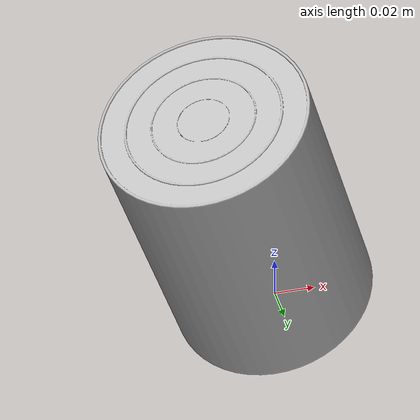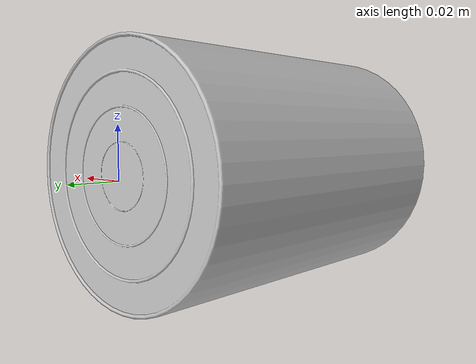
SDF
<?xml version="1.0" ?>
<sdf version="1.4">
  <model name="corn">
      <static>1</static>
      <link name='link'>
        <inertial>
          <mass>0.2</mass>
          <inertia>
            <ixx>0.166667</ixx>
            <ixy>0</ixy>
            <ixz>0</ixz>
            <iyy>0.166667</iyy>
            <iyz>0</iyz>
            <izz>0.166667</izz>
          </inertia>
        </inertial>
        <collision name='collision'>
          <geometry>
            <mesh>
              <uri>model://corn/meshes/corn.dae</uri>
              <scale>0.01 0.01 0.01</scale>
            </mesh>
          </geometry>
          <pose>0 0 0 1.5708 0 0</pose>
          <surface>
            <friction>
              <ode>
                <mu>30.0</mu>
                <mu2>30.0</mu2>
              </ode>
            </friction>
            <contact>
              <ode>
                <kp>1000000.0</kp>
                <kd>100.0</kd>
                <max_vel>1.0</max_vel>
                <min_depth>0.002</min_depth>
              </ode>
            </contact>
          </surface>
        </collision>
        <visual name='visual'>
          <geometry>
            <mesh>
              <uri>model://corn/meshes/corn.dae</uri>
              <scale>0.01 0.01 0.01</scale>
            </mesh>
          </geometry>
          <pose>0 0 0 1.5708 0 0</pose>
        </visual>
        <velocity_decay>
          <linear>0.000000</linear>
          <angular>0.000000</angular>
        </velocity_decay>
        <self_collide>0</self_collide>
        <kinematic>0</kinematic>
        <gravity>1</gravity>
      </link>
  </model>
</sdf>
